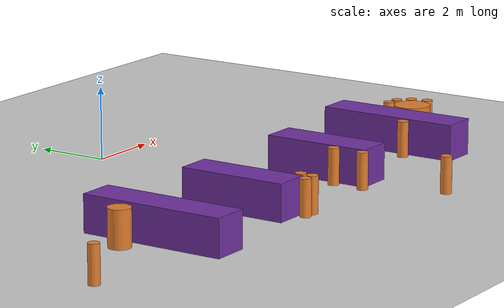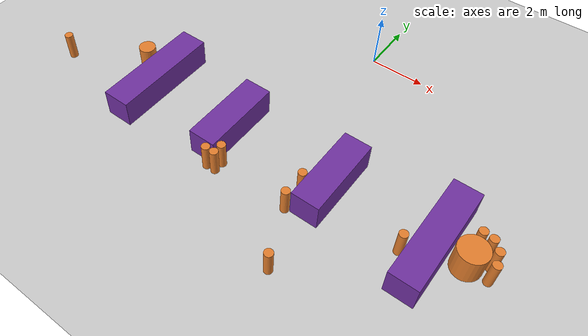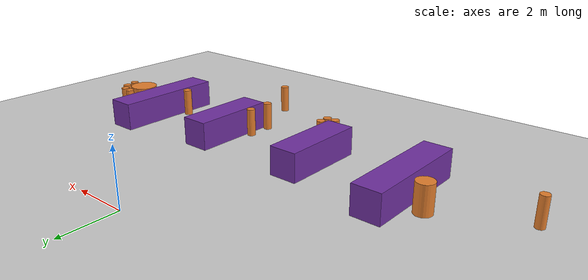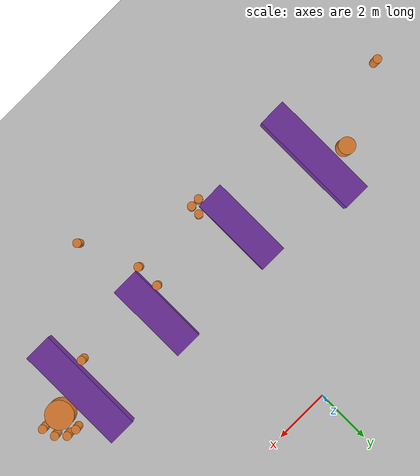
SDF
<sdf version="1.7">
 <world name="default">
  <model name="ground_plane">
   <static>1</static>
   <link name="link">
    <collision name="collision">
     <geometry><plane><normal>0 0 1</normal><size>100 100</size></plane></geometry>
     <surface>
      <contact><collide_bitmask>65535</collide_bitmask></contact>
      <friction><ode><mu>100</mu><mu2>50</mu2></ode></friction>
     </surface>
    </collision>
    <visual name="visual">
     <cast_shadows>0</cast_shadows>
     <geometry><plane><normal>0 0 1</normal><size>100 100</size></plane></geometry>
     <material>
      <script><uri>file://media/materials/scripts/gazebo.material</uri><name>Gazebo/Grey</name></script>
     </material>
    </visual>
   </link>
  </model>
  <model name="B_1_4_1">
   <link name="link_0">
    <inertial>
     <mass>40</mass>
     <inertia><ixx>56.6667</ixx><ixy>0</ixy><ixz>0</ixz><iyy>6.66667</iyy><iyz>0</iyz><izz>56.6667</izz></inertia>
    </inertial>
    <visual name="visual">
     <geometry><box><size>1 4 1</size></box></geometry>
     <material>
      <lighting>1</lighting>
      <script><uri>file://media/materials/scripts/gazebo.material</uri><name>Gazebo/Grey</name></script>
      <shader type="pixel"><normal_map>__default__</normal_map></shader>
      <ambient>0.44 0.19 0.63 1</ambient>
      <diffuse>0.7 0.7 0.7 1</diffuse>
      <specular>0.01 0.01 0.01 1</specular>
      <emissive>0 0 0 1</emissive>
     </material>
    </visual>
    <collision name="collision">
     <geometry><box><size>1 4 1</size></box></geometry>
     <surface>
      <friction>
       <ode><mu>1</mu><mu2>1</mu2><fdir1>0 0 0</fdir1><slip1>0</slip1><slip2>0</slip2></ode>
       <torsional>
        <coefficient>1</coefficient>
        <patch_radius>0</patch_radius>
        <surface_radius>0</surface_radius>
        <use_patch_radius>1</use_patch_radius>
        <ode><slip>0</slip></ode>
       </torsional>
      </friction>
      <bounce><restitution_coefficient>0</restitution_coefficient><threshold>1e+06</threshold></bounce>
      <contact>
       <collide_without_contact>0</collide_without_contact>
       <collide_without_contact_bitmask>1</collide_without_contact_bitmask>
       <collide_bitmask>1</collide_bitmask>
       <ode>
        <soft_cfm>0</soft_cfm>
        <soft_erp>0.2</soft_erp>
        <kp>1e+13</kp>
        <kd>1</kd>
        <max_vel>0.01</max_vel>
        <min_depth>0</min_depth>
       </ode>
       <bullet>
        <split_impulse>1</split_impulse>
        <split_impulse_penetration_threshold>-0.01</split_impulse_penetration_threshold>
        <soft_cfm>0</soft_cfm>
        <soft_erp>0.2</soft_erp>
        <kp>1e+13</kp>
        <kd>1</kd>
       </bullet>
      </contact>
     </surface>
    </collision>
   </link>
   <static>0</static>
   <pose>-5.50992 -5.97184 0.5 0 -0 0</pose>
  </model>
  <model name="B_1_4_4">
   <link name="link_0">
    <inertial>
     <mass>40</mass>
     <inertia><ixx>56.6667</ixx><ixy>0</ixy><ixz>0</ixz><iyy>6.66667</iyy><iyz>0</iyz><izz>56.6667</izz></inertia>
    </inertial>
    <visual name="visual">
     <geometry><box><size>1 4 1</size></box></geometry>
     <material>
      <lighting>1</lighting>
      <script><uri>file://media/materials/scripts/gazebo.material</uri><name>Gazebo/Grey</name></script>
      <shader type="pixel"><normal_map>__default__</normal_map></shader>
      <ambient>0.44 0.19 0.63 1</ambient>
      <diffuse>0.7 0.7 0.7 1</diffuse>
      <specular>0.01 0.01 0.01 1</specular>
      <emissive>0 0 0 1</emissive>
     </material>
    </visual>
    <collision name="collision">
     <geometry><box><size>1 4 1</size></box></geometry>
     <surface>
      <friction>
       <ode><mu>1</mu><mu2>1</mu2><fdir1>0 0 0</fdir1><slip1>0</slip1><slip2>0</slip2></ode>
       <torsional>
        <coefficient>1</coefficient>
        <patch_radius>0</patch_radius>
        <surface_radius>0</surface_radius>
        <use_patch_radius>1</use_patch_radius>
        <ode><slip>0</slip></ode>
       </torsional>
      </friction>
      <bounce><restitution_coefficient>0</restitution_coefficient><threshold>1e+06</threshold></bounce>
      <contact>
       <collide_without_contact>0</collide_without_contact>
       <collide_without_contact_bitmask>1</collide_without_contact_bitmask>
       <collide_bitmask>1</collide_bitmask>
       <ode>
        <soft_cfm>0</soft_cfm>
        <soft_erp>0.2</soft_erp>
        <kp>1e+13</kp>
        <kd>1</kd>
        <max_vel>0.01</max_vel>
        <min_depth>0</min_depth>
       </ode>
       <bullet>
        <split_impulse>1</split_impulse>
        <split_impulse_penetration_threshold>-0.01</split_impulse_penetration_threshold>
        <soft_cfm>0</soft_cfm>
        <soft_erp>0.2</soft_erp>
        <kp>1e+13</kp>
        <kd>1</kd>
       </bullet>
      </contact>
     </surface>
    </collision>
   </link>
   <static>0</static>
   <pose>5.54818 -5.98559 0.5 0 -0 0</pose>
  </model>
  <model name="B_1_3_5">
   <link name="link_1">
    <inertial>
     <mass>30</mass>
     <inertia><ixx>25</ixx><ixy>0</ixy><ixz>0</ixz><iyy>5</iyy><iyz>0</iyz><izz>25</izz></inertia>
    </inertial>
    <visual name="visual">
     <geometry><box><size>1 3 1</size></box></geometry>
     <material>
      <lighting>1</lighting>
      <script><uri>file://media/materials/scripts/gazebo.material</uri><name>Gazebo/Grey</name></script>
      <shader type="pixel"><normal_map>__default__</normal_map></shader>
      <ambient>0.44 0.19 0.63 1</ambient>
      <diffuse>0.7 0.7 0.7 1</diffuse>
      <specular>0.01 0.01 0.01 1</specular>
      <emissive>0 0 0 1</emissive>
     </material>
    </visual>
    <collision name="collision">
     <geometry><box><size>1 3 1</size></box></geometry>
     <surface>
      <friction>
       <ode><mu>1</mu><mu2>1</mu2><fdir1>0 0 0</fdir1><slip1>0</slip1><slip2>0</slip2></ode>
       <torsional>
        <coefficient>1</coefficient>
        <patch_radius>0</patch_radius>
        <surface_radius>0</surface_radius>
        <use_patch_radius>1</use_patch_radius>
        <ode><slip>0</slip></ode>
       </torsional>
      </friction>
      <bounce><restitution_coefficient>0</restitution_coefficient><threshold>1e+06</threshold></bounce>
      <contact>
       <collide_without_contact>0</collide_without_contact>
       <collide_without_contact_bitmask>1</collide_without_contact_bitmask>
       <collide_bitmask>1</collide_bitmask>
       <ode>
        <soft_cfm>0</soft_cfm>
        <soft_erp>0.2</soft_erp>
        <kp>1e+13</kp>
        <kd>1</kd>
        <max_vel>0.01</max_vel>
        <min_depth>0</min_depth>
       </ode>
       <bullet>
        <split_impulse>1</split_impulse>
        <split_impulse_penetration_threshold>-0.01</split_impulse_penetration_threshold>
        <soft_cfm>0</soft_cfm>
        <soft_erp>0.2</soft_erp>
        <kp>1e+13</kp>
        <kd>1</kd>
       </bullet>
      </contact>
     </surface>
    </collision>
   </link>
   <static>0</static>
   <pose>1.94317 -5.96793 0.5 0 -0 0</pose>
  </model>
  <model name="B_1_3_4">
   <link name="link_1">
    <inertial>
     <mass>30</mass>
     <inertia><ixx>25</ixx><ixy>0</ixy><ixz>0</ixz><iyy>5</iyy><iyz>0</iyz><izz>25</izz></inertia>
    </inertial>
    <visual name="visual">
     <geometry><box><size>1 3 1</size></box></geometry>
     <material>
      <lighting>1</lighting>
      <script><uri>file://media/materials/scripts/gazebo.material</uri><name>Gazebo/Grey</name></script>
      <shader type="pixel"><normal_map>__default__</normal_map></shader>
      <ambient>0.44 0.19 0.63 1</ambient>
      <diffuse>0.7 0.7 0.7 1</diffuse>
      <specular>0.01 0.01 0.01 1</specular>
      <emissive>0 0 0 1</emissive>
     </material>
    </visual>
    <collision name="collision">
     <geometry><box><size>1 3 1</size></box></geometry>
     <surface>
      <friction>
       <ode><mu>1</mu><mu2>1</mu2><fdir1>0 0 0</fdir1><slip1>0</slip1><slip2>0</slip2></ode>
       <torsional>
        <coefficient>1</coefficient>
        <patch_radius>0</patch_radius>
        <surface_radius>0</surface_radius>
        <use_patch_radius>1</use_patch_radius>
        <ode><slip>0</slip></ode>
       </torsional>
      </friction>
      <bounce><restitution_coefficient>0</restitution_coefficient><threshold>1e+06</threshold></bounce>
      <contact>
       <collide_without_contact>0</collide_without_contact>
       <collide_without_contact_bitmask>1</collide_without_contact_bitmask>
       <collide_bitmask>1</collide_bitmask>
       <ode>
        <soft_cfm>0</soft_cfm>
        <soft_erp>0.2</soft_erp>
        <kp>1e+13</kp>
        <kd>1</kd>
        <max_vel>0.01</max_vel>
        <min_depth>0</min_depth>
       </ode>
       <bullet>
        <split_impulse>1</split_impulse>
        <split_impulse_penetration_threshold>-0.01</split_impulse_penetration_threshold>
        <soft_cfm>0</soft_cfm>
        <soft_erp>0.2</soft_erp>
        <kp>1e+13</kp>
        <kd>1</kd>
       </bullet>
      </contact>
     </surface>
    </collision>
   </link>
   <static>0</static>
   <pose>-2.08937 -5.9974 0.5 0 -0 0</pose>
  </model>
  <model name="C_1">
   <link name="link_2">
    <inertial>
     <mass>7.85398</mass>
     <inertia><ixx>1.14537</ixx><ixy>0</ixy><ixz>0</ixz><iyy>1.14537</iyy><iyz>0</iyz><izz>0.981748</izz></inertia>
    </inertial>
    <visual name="visual">
     <geometry><cylinder><radius>0.5</radius><length>1</length></cylinder></geometry>
     <material>
      <lighting>1</lighting>
      <script><uri>file://media/materials/scripts/gazebo.material</uri><name>Gazebo/Grey</name></script>
      <shader type="pixel"><normal_map>__default__</normal_map></shader>
      <ambient>0.9 0.5 0.18 1</ambient>
      <diffuse>0.7 0.7 0.7 1</diffuse>
      <specular>0.01 0.01 0.01 1</specular>
      <emissive>0 0 0 1</emissive>
     </material>
    </visual>
    <collision name="collision">
     <geometry><cylinder><radius>0.5</radius><length>1</length></cylinder></geometry>
     <surface>
      <friction>
       <ode><mu>1</mu><mu2>1</mu2><fdir1>0 0 0</fdir1><slip1>0</slip1><slip2>0</slip2></ode>
       <torsional>
        <coefficient>1</coefficient>
        <patch_radius>0</patch_radius>
        <surface_radius>0</surface_radius>
        <use_patch_radius>1</use_patch_radius>
        <ode><slip>0</slip></ode>
       </torsional>
      </friction>
      <bounce><restitution_coefficient>0</restitution_coefficient><threshold>1e+06</threshold></bounce>
      <contact>
       <collide_without_contact>0</collide_without_contact>
       <collide_without_contact_bitmask>1</collide_without_contact_bitmask>
       <collide_bitmask>1</collide_bitmask>
       <ode>
        <soft_cfm>0</soft_cfm>
        <soft_erp>0.2</soft_erp>
        <kp>1e+13</kp>
        <kd>1</kd>
        <max_vel>0.01</max_vel>
        <min_depth>0</min_depth>
       </ode>
       <bullet>
        <split_impulse>1</split_impulse>
        <split_impulse_penetration_threshold>-0.01</split_impulse_penetration_threshold>
        <soft_cfm>0</soft_cfm>
        <soft_erp>0.2</soft_erp>
        <kp>1e+13</kp>
        <kd>1</kd>
       </bullet>
      </contact>
     </surface>
    </collision>
   </link>
   <static>0</static>
   <pose>6.61588 -5.87964 0.499805 0 -0 -0.000369</pose>
  </model>
  <model name="C_03_23">
   <link name="link_3">
    <inertial>
     <mass>2.82743</mass>
     <inertia>
      <ixx>0.299237</ixx>
      <ixy>0</ixy>
      <ixz>0</ixz>
      <iyy>0.299237</iyy>
      <iyz>0</iyz>
      <izz>0.127235</izz>
     </inertia>
    </inertial>
    <visual name="visual">
     <geometry><cylinder><radius>0.15</radius><length>1</length></cylinder></geometry>
     <material>
      <lighting>1</lighting>
      <script><uri>file://media/materials/scripts/gazebo.material</uri><name>Gazebo/Grey</name></script>
      <shader type="pixel"><normal_map>__default__</normal_map></shader>
      <ambient>0.9 0.5 0.18 1</ambient>
      <diffuse>0.7 0.7 0.7 1</diffuse>
      <specular>0.01 0.01 0.01 1</specular>
      <emissive>0 0 0 1</emissive>
     </material>
    </visual>
    <collision name="collision">
     <geometry><cylinder><radius>0.15</radius><length>1</length></cylinder></geometry>
     <surface>
      <friction>
       <ode><mu>1</mu><mu2>1</mu2><fdir1>0 0 0</fdir1><slip1>0</slip1><slip2>0</slip2></ode>
       <torsional>
        <coefficient>1</coefficient>
        <patch_radius>0</patch_radius>
        <surface_radius>0</surface_radius>
        <use_patch_radius>1</use_patch_radius>
        <ode><slip>0</slip></ode>
       </torsional>
      </friction>
      <bounce><restitution_coefficient>0</restitution_coefficient><threshold>1e+06</threshold></bounce>
      <contact>
       <collide_without_contact>0</collide_without_contact>
       <collide_without_contact_bitmask>1</collide_without_contact_bitmask>
       <collide_bitmask>1</collide_bitmask>
       <ode>
        <soft_cfm>0</soft_cfm>
        <soft_erp>0.2</soft_erp>
        <kp>1e+13</kp>
        <kd>1</kd>
        <max_vel>0.01</max_vel>
        <min_depth>0</min_depth>
       </ode>
       <bullet>
        <split_impulse>1</split_impulse>
        <split_impulse_penetration_threshold>-0.01</split_impulse_penetration_threshold>
        <soft_cfm>0</soft_cfm>
        <soft_erp>0.2</soft_erp>
        <kp>1e+13</kp>
        <kd>1</kd>
       </bullet>
      </contact>
     </surface>
    </collision>
   </link>
   <static>0</static>
   <pose>4.81153 -6.64217 0.499805 0 -0 0</pose>
  </model>
  <model name="C_06_0">
   <link name="link_3">
    <inertial>
     <mass>2.82743</mass>
     <inertia>
      <ixx>0.299237</ixx>
      <ixy>0</ixy>
      <ixz>0</ixz>
      <iyy>0.299237</iyy>
      <iyz>0</iyz>
      <izz>0.127235</izz>
     </inertia>
    </inertial>
    <visual name="visual">
     <geometry><cylinder><radius>0.3</radius><length>1</length></cylinder></geometry>
     <material>
      <lighting>1</lighting>
      <script><uri>file://media/materials/scripts/gazebo.material</uri><name>Gazebo/Grey</name></script>
      <shader type="pixel"><normal_map>__default__</normal_map></shader>
      <ambient>0.9 0.5 0.18 1</ambient>
      <diffuse>0.7 0.7 0.7 1</diffuse>
      <specular>0.01 0.01 0.01 1</specular>
      <emissive>0 0 0 1</emissive>
     </material>
    </visual>
    <collision name="collision">
     <geometry><cylinder><radius>0.3</radius><length>1</length></cylinder></geometry>
     <surface>
      <friction>
       <ode><mu>1</mu><mu2>1</mu2><fdir1>0 0 0</fdir1><slip1>0</slip1><slip2>0</slip2></ode>
       <torsional>
        <coefficient>1</coefficient>
        <patch_radius>0</patch_radius>
        <surface_radius>0</surface_radius>
        <use_patch_radius>1</use_patch_radius>
        <ode><slip>0</slip></ode>
       </torsional>
      </friction>
      <bounce><restitution_coefficient>0</restitution_coefficient><threshold>1e+06</threshold></bounce>
      <contact>
       <collide_without_contact>0</collide_without_contact>
       <collide_without_contact_bitmask>1</collide_without_contact_bitmask>
       <collide_bitmask>1</collide_bitmask>
       <ode>
        <soft_cfm>0</soft_cfm>
        <soft_erp>0.2</soft_erp>
        <kp>1e+13</kp>
        <kd>1</kd>
        <max_vel>0.01</max_vel>
        <min_depth>0</min_depth>
       </ode>
       <bullet>
        <split_impulse>1</split_impulse>
        <split_impulse_penetration_threshold>-0.01</split_impulse_penetration_threshold>
        <soft_cfm>0</soft_cfm>
        <soft_erp>0.2</soft_erp>
        <kp>1e+13</kp>
        <kd>1</kd>
       </bullet>
      </contact>
     </surface>
    </collision>
   </link>
   <static>0</static>
   <pose>-6.48687 -5.41769 0.499805 0 -0 0</pose>
  </model>
  <model name="C_03_24">
   <link name="link_3">
    <inertial>
     <mass>2.82743</mass>
     <inertia>
      <ixx>0.299237</ixx>
      <ixy>0</ixy>
      <ixz>0</ixz>
      <iyy>0.299237</iyy>
      <iyz>0</iyz>
      <izz>0.127235</izz>
     </inertia>
    </inertial>
    <visual name="visual">
     <geometry><cylinder><radius>0.15</radius><length>1</length></cylinder></geometry>
     <material>
      <lighting>1</lighting>
      <script><uri>file://media/materials/scripts/gazebo.material</uri><name>Gazebo/Grey</name></script>
      <shader type="pixel"><normal_map>__default__</normal_map></shader>
      <ambient>0.9 0.5 0.18 1</ambient>
      <diffuse>0.7 0.7 0.7 1</diffuse>
      <specular>0.01 0.01 0.01 1</specular>
      <emissive>0 0 0 1</emissive>
     </material>
    </visual>
    <collision name="collision">
     <geometry><cylinder><radius>0.15</radius><length>1</length></cylinder></geometry>
     <surface>
      <friction>
       <ode><mu>1</mu><mu2>1</mu2><fdir1>0 0 0</fdir1><slip1>0</slip1><slip2>0</slip2></ode>
       <torsional>
        <coefficient>1</coefficient>
        <patch_radius>0</patch_radius>
        <surface_radius>0</surface_radius>
        <use_patch_radius>1</use_patch_radius>
        <ode><slip>0</slip></ode>
       </torsional>
      </friction>
      <bounce><restitution_coefficient>0</restitution_coefficient><threshold>1e+06</threshold></bounce>
      <contact>
       <collide_without_contact>0</collide_without_contact>
       <collide_without_contact_bitmask>1</collide_without_contact_bitmask>
       <collide_bitmask>1</collide_bitmask>
       <ode>
        <soft_cfm>0</soft_cfm>
        <soft_erp>0.2</soft_erp>
        <kp>1e+13</kp>
        <kd>1</kd>
        <max_vel>0.01</max_vel>
        <min_depth>0</min_depth>
       </ode>
       <bullet>
        <split_impulse>1</split_impulse>
        <split_impulse_penetration_threshold>-0.01</split_impulse_penetration_threshold>
        <soft_cfm>0</soft_cfm>
        <soft_erp>0.2</soft_erp>
        <kp>1e+13</kp>
        <kd>1</kd>
       </bullet>
      </contact>
     </surface>
    </collision>
   </link>
   <static>0</static>
   <pose>-9.24511 -6.7358 0.499805 0 0 -4e-06</pose>
  </model>
  <model name="C_03_25">
   <link name="link_3">
    <inertial>
     <mass>2.82743</mass>
     <inertia>
      <ixx>0.299237</ixx>
      <ixy>0</ixy>
      <ixz>0</ixz>
      <iyy>0.299237</iyy>
      <iyz>0</iyz>
      <izz>0.127235</izz>
     </inertia>
    </inertial>
    <visual name="visual">
     <geometry><cylinder><radius>0.15</radius><length>1</length></cylinder></geometry>
     <material>
      <lighting>1</lighting>
      <script><uri>file://media/materials/scripts/gazebo.material</uri><name>Gazebo/Grey</name></script>
      <shader type="pixel"><normal_map>__default__</normal_map></shader>
      <ambient>0.9 0.5 0.18 1</ambient>
      <diffuse>0.7 0.7 0.7 1</diffuse>
      <specular>0.01 0.01 0.01 1</specular>
      <emissive>0 0 0 1</emissive>
     </material>
    </visual>
    <collision name="collision">
     <geometry><cylinder><radius>0.15</radius><length>1</length></cylinder></geometry>
     <surface>
      <friction>
       <ode><mu>1</mu><mu2>1</mu2><fdir1>0 0 0</fdir1><slip1>0</slip1><slip2>0</slip2></ode>
       <torsional>
        <coefficient>1</coefficient>
        <patch_radius>0</patch_radius>
        <surface_radius>0</surface_radius>
        <use_patch_radius>1</use_patch_radius>
        <ode><slip>0</slip></ode>
       </torsional>
      </friction>
      <bounce><restitution_coefficient>0</restitution_coefficient><threshold>1e+06</threshold></bounce>
      <contact>
       <collide_without_contact>0</collide_without_contact>
       <collide_without_contact_bitmask>1</collide_without_contact_bitmask>
       <collide_bitmask>1</collide_bitmask>
       <ode>
        <soft_cfm>0</soft_cfm>
        <soft_erp>0.2</soft_erp>
        <kp>1e+13</kp>
        <kd>1</kd>
        <max_vel>0.01</max_vel>
        <min_depth>0</min_depth>
       </ode>
       <bullet>
        <split_impulse>1</split_impulse>
        <split_impulse_penetration_threshold>-0.01</split_impulse_penetration_threshold>
        <soft_cfm>0</soft_cfm>
        <soft_erp>0.2</soft_erp>
        <kp>1e+13</kp>
        <kd>1</kd>
       </bullet>
      </contact>
     </surface>
    </collision>
   </link>
   <static>0</static>
   <pose>7.22121 -5.5009 0.499805 0 0 -7e-06</pose>
  </model>
  <model name="C_03_26">
   <link name="link_3">
    <inertial>
     <mass>2.82743</mass>
     <inertia>
      <ixx>0.299237</ixx>
      <ixy>0</ixy>
      <ixz>0</ixz>
      <iyy>0.299237</iyy>
      <iyz>0</iyz>
      <izz>0.127235</izz>
     </inertia>
    </inertial>
    <visual name="visual">
     <geometry><cylinder><radius>0.15</radius><length>1</length></cylinder></geometry>
     <material>
      <lighting>1</lighting>
      <script><uri>file://media/materials/scripts/gazebo.material</uri><name>Gazebo/Grey</name></script>
      <shader type="pixel"><normal_map>__default__</normal_map></shader>
      <ambient>0.9 0.5 0.18 1</ambient>
      <diffuse>0.7 0.7 0.7 1</diffuse>
      <specular>0.01 0.01 0.01 1</specular>
      <emissive>0 0 0 1</emissive>
     </material>
    </visual>
    <collision name="collision">
     <geometry><cylinder><radius>0.15</radius><length>1</length></cylinder></geometry>
     <surface>
      <friction>
       <ode><mu>1</mu><mu2>1</mu2><fdir1>0 0 0</fdir1><slip1>0</slip1><slip2>0</slip2></ode>
       <torsional>
        <coefficient>1</coefficient>
        <patch_radius>0</patch_radius>
        <surface_radius>0</surface_radius>
        <use_patch_radius>1</use_patch_radius>
        <ode><slip>0</slip></ode>
       </torsional>
      </friction>
      <bounce><restitution_coefficient>0</restitution_coefficient><threshold>1e+06</threshold></bounce>
      <contact>
       <collide_without_contact>0</collide_without_contact>
       <collide_without_contact_bitmask>1</collide_without_contact_bitmask>
       <collide_bitmask>1</collide_bitmask>
       <ode>
        <soft_cfm>0</soft_cfm>
        <soft_erp>0.2</soft_erp>
        <kp>1e+13</kp>
        <kd>1</kd>
        <max_vel>0.01</max_vel>
        <min_depth>0</min_depth>
       </ode>
       <bullet>
        <split_impulse>1</split_impulse>
        <split_impulse_penetration_threshold>-0.01</split_impulse_penetration_threshold>
        <soft_cfm>0</soft_cfm>
        <soft_erp>0.2</soft_erp>
        <kp>1e+13</kp>
        <kd>1</kd>
       </bullet>
      </contact>
     </surface>
    </collision>
   </link>
   <static>0</static>
   <pose>7.34024 -5.94494 0.499805 0 0 -9e-06</pose>
  </model>
  <model name="C_03_27">
   <link name="link_3">
    <inertial>
     <mass>2.82743</mass>
     <inertia>
      <ixx>0.299237</ixx>
      <ixy>0</ixy>
      <ixz>0</ixz>
      <iyy>0.299237</iyy>
      <iyz>0</iyz>
      <izz>0.127235</izz>
     </inertia>
    </inertial>
    <visual name="visual">
     <geometry><cylinder><radius>0.15</radius><length>1</length></cylinder></geometry>
     <material>
      <lighting>1</lighting>
      <script><uri>file://media/materials/scripts/gazebo.material</uri><name>Gazebo/Grey</name></script>
      <shader type="pixel"><normal_map>__default__</normal_map></shader>
      <ambient>0.9 0.5 0.18 1</ambient>
      <diffuse>0.7 0.7 0.7 1</diffuse>
      <specular>0.01 0.01 0.01 1</specular>
      <emissive>0 0 0 1</emissive>
     </material>
    </visual>
    <collision name="collision">
     <geometry><cylinder><radius>0.15</radius><length>1</length></cylinder></geometry>
     <surface>
      <friction>
       <ode><mu>1</mu><mu2>1</mu2><fdir1>0 0 0</fdir1><slip1>0</slip1><slip2>0</slip2></ode>
       <torsional>
        <coefficient>1</coefficient>
        <patch_radius>0</patch_radius>
        <surface_radius>0</surface_radius>
        <use_patch_radius>1</use_patch_radius>
        <ode><slip>0</slip></ode>
       </torsional>
      </friction>
      <bounce><restitution_coefficient>0</restitution_coefficient><threshold>1e+06</threshold></bounce>
      <contact>
       <collide_without_contact>0</collide_without_contact>
       <collide_without_contact_bitmask>1</collide_without_contact_bitmask>
       <collide_bitmask>1</collide_bitmask>
       <ode>
        <soft_cfm>0</soft_cfm>
        <soft_erp>0.2</soft_erp>
        <kp>1e+13</kp>
        <kd>1</kd>
        <max_vel>0.01</max_vel>
        <min_depth>0</min_depth>
       </ode>
       <bullet>
        <split_impulse>1</split_impulse>
        <split_impulse_penetration_threshold>-0.01</split_impulse_penetration_threshold>
        <soft_cfm>0</soft_cfm>
        <soft_erp>0.2</soft_erp>
        <kp>1e+13</kp>
        <kd>1</kd>
       </bullet>
      </contact>
     </surface>
    </collision>
   </link>
   <static>0</static>
   <pose>6.92455 -5.20509 0.499805 0 0 -1.1e-05</pose>
  </model>
  <model name="C_03_28">
   <link name="link_3">
    <inertial>
     <mass>2.82743</mass>
     <inertia>
      <ixx>0.299237</ixx>
      <ixy>0</ixy>
      <ixz>0</ixz>
      <iyy>0.299237</iyy>
      <iyz>0</iyz>
      <izz>0.127235</izz>
     </inertia>
    </inertial>
    <visual name="visual">
     <geometry><cylinder><radius>0.15</radius><length>1</length></cylinder></geometry>
     <material>
      <lighting>1</lighting>
      <script><uri>file://media/materials/scripts/gazebo.material</uri><name>Gazebo/Grey</name></script>
      <shader type="pixel"><normal_map>__default__</normal_map></shader>
      <ambient>0.9 0.5 0.18 1</ambient>
      <diffuse>0.7 0.7 0.7 1</diffuse>
      <specular>0.01 0.01 0.01 1</specular>
      <emissive>0 0 0 1</emissive>
     </material>
    </visual>
    <collision name="collision">
     <geometry><cylinder><radius>0.15</radius><length>1</length></cylinder></geometry>
     <surface>
      <friction>
       <ode><mu>1</mu><mu2>1</mu2><fdir1>0 0 0</fdir1><slip1>0</slip1><slip2>0</slip2></ode>
       <torsional>
        <coefficient>1</coefficient>
        <patch_radius>0</patch_radius>
        <surface_radius>0</surface_radius>
        <use_patch_radius>1</use_patch_radius>
        <ode><slip>0</slip></ode>
       </torsional>
      </friction>
      <bounce><restitution_coefficient>0</restitution_coefficient><threshold>1e+06</threshold></bounce>
      <contact>
       <collide_without_contact>0</collide_without_contact>
       <collide_without_contact_bitmask>1</collide_without_contact_bitmask>
       <collide_bitmask>1</collide_bitmask>
       <ode>
        <soft_cfm>0</soft_cfm>
        <soft_erp>0.2</soft_erp>
        <kp>1e+13</kp>
        <kd>1</kd>
        <max_vel>0.01</max_vel>
        <min_depth>0</min_depth>
       </ode>
       <bullet>
        <split_impulse>1</split_impulse>
        <split_impulse_penetration_threshold>-0.01</split_impulse_penetration_threshold>
        <soft_cfm>0</soft_cfm>
        <soft_erp>0.2</soft_erp>
        <kp>1e+13</kp>
        <kd>1</kd>
       </bullet>
      </contact>
     </surface>
    </collision>
   </link>
   <static>0</static>
   <pose>6.57079 -5.15313 0.499805 0 -0 0.000313</pose>
  </model>
  <model name="C_03_4">
   <link name="link_3">
    <inertial>
     <mass>2.82743</mass>
     <inertia>
      <ixx>0.299237</ixx>
      <ixy>0</ixy>
      <ixz>0</ixz>
      <iyy>0.299237</iyy>
      <iyz>0</iyz>
      <izz>0.127235</izz>
     </inertia>
    </inertial>
    <visual name="visual">
     <geometry><cylinder><radius>0.15</radius><length>1</length></cylinder></geometry>
     <material>
      <lighting>1</lighting>
      <script><uri>file://media/materials/scripts/gazebo.material</uri><name>Gazebo/Grey</name></script>
      <shader type="pixel"><normal_map>__default__</normal_map></shader>
      <ambient>0.9 0.5 0.18 1</ambient>
      <diffuse>0.7 0.7 0.7 1</diffuse>
      <specular>0.01 0.01 0.01 1</specular>
      <emissive>0 0 0 1</emissive>
     </material>
    </visual>
    <collision name="collision">
     <geometry><cylinder><radius>0.15</radius><length>1</length></cylinder></geometry>
     <surface>
      <friction>
       <ode><mu>1</mu><mu2>1</mu2><fdir1>0 0 0</fdir1><slip1>0</slip1><slip2>0</slip2></ode>
       <torsional>
        <coefficient>1</coefficient>
        <patch_radius>0</patch_radius>
        <surface_radius>0</surface_radius>
        <use_patch_radius>1</use_patch_radius>
        <ode><slip>0</slip></ode>
       </torsional>
      </friction>
      <bounce><restitution_coefficient>0</restitution_coefficient><threshold>1e+06</threshold></bounce>
      <contact>
       <collide_without_contact>0</collide_without_contact>
       <collide_without_contact_bitmask>1</collide_without_contact_bitmask>
       <collide_bitmask>1</collide_bitmask>
       <ode>
        <soft_cfm>0</soft_cfm>
        <soft_erp>0.2</soft_erp>
        <kp>1e+13</kp>
        <kd>1</kd>
        <max_vel>0.01</max_vel>
        <min_depth>0</min_depth>
       </ode>
       <bullet>
        <split_impulse>1</split_impulse>
        <split_impulse_penetration_threshold>-0.01</split_impulse_penetration_threshold>
        <soft_cfm>0</soft_cfm>
        <soft_erp>0.2</soft_erp>
        <kp>1e+13</kp>
        <kd>1</kd>
       </bullet>
      </contact>
     </surface>
    </collision>
   </link>
   <static>0</static>
   <pose>-1.74478 -7.67486 0.499805 0 -0 5e-06</pose>
  </model>
  <model name="C_03_29">
   <link name="link_3">
    <inertial>
     <mass>2.82743</mass>
     <inertia>
      <ixx>0.299237</ixx>
      <ixy>0</ixy>
      <ixz>0</ixz>
      <iyy>0.299237</iyy>
      <iyz>0</iyz>
      <izz>0.127235</izz>
     </inertia>
    </inertial>
    <visual name="visual">
     <geometry><cylinder><radius>0.15</radius><length>1</length></cylinder></geometry>
     <material>
      <lighting>1</lighting>
      <script><uri>file://media/materials/scripts/gazebo.material</uri><name>Gazebo/Grey</name></script>
      <shader type="pixel"><normal_map>__default__</normal_map></shader>
      <ambient>0.9 0.5 0.18 1</ambient>
      <diffuse>0.7 0.7 0.7 1</diffuse>
      <specular>0.01 0.01 0.01 1</specular>
      <emissive>0 0 0 1</emissive>
     </material>
    </visual>
    <collision name="collision">
     <geometry><cylinder><radius>0.15</radius><length>1</length></cylinder></geometry>
     <surface>
      <friction>
       <ode><mu>1</mu><mu2>1</mu2><fdir1>0 0 0</fdir1><slip1>0</slip1><slip2>0</slip2></ode>
       <torsional>
        <coefficient>1</coefficient>
        <patch_radius>0</patch_radius>
        <surface_radius>0</surface_radius>
        <use_patch_radius>1</use_patch_radius>
        <ode><slip>0</slip></ode>
       </torsional>
      </friction>
      <bounce><restitution_coefficient>0</restitution_coefficient><threshold>1e+06</threshold></bounce>
      <contact>
       <collide_without_contact>0</collide_without_contact>
       <collide_without_contact_bitmask>1</collide_without_contact_bitmask>
       <collide_bitmask>1</collide_bitmask>
       <ode>
        <soft_cfm>0</soft_cfm>
        <soft_erp>0.2</soft_erp>
        <kp>1e+13</kp>
        <kd>1</kd>
        <max_vel>0.01</max_vel>
        <min_depth>0</min_depth>
       </ode>
       <bullet>
        <split_impulse>1</split_impulse>
        <split_impulse_penetration_threshold>-0.01</split_impulse_penetration_threshold>
        <soft_cfm>0</soft_cfm>
        <soft_erp>0.2</soft_erp>
        <kp>1e+13</kp>
        <kd>1</kd>
       </bullet>
      </contact>
     </surface>
    </collision>
   </link>
   <static>0</static>
   <pose>-1.41362 -7.66686 0.499805 0 -0 5e-06</pose>
  </model>
  <model name="C_03_30">
   <link name="link_3">
    <inertial>
     <mass>2.82743</mass>
     <inertia>
      <ixx>0.299237</ixx>
      <ixy>0</ixy>
      <ixz>0</ixz>
      <iyy>0.299237</iyy>
      <iyz>0</iyz>
      <izz>0.127235</izz>
     </inertia>
    </inertial>
    <visual name="visual">
     <geometry><cylinder><radius>0.15</radius><length>1</length></cylinder></geometry>
     <material>
      <lighting>1</lighting>
      <script><uri>file://media/materials/scripts/gazebo.material</uri><name>Gazebo/Grey</name></script>
      <shader type="pixel"><normal_map>__default__</normal_map></shader>
      <ambient>0.9 0.5 0.18 1</ambient>
      <diffuse>0.7 0.7 0.7 1</diffuse>
      <specular>0.01 0.01 0.01 1</specular>
      <emissive>0 0 0 1</emissive>
     </material>
    </visual>
    <collision name="collision">
     <geometry><cylinder><radius>0.15</radius><length>1</length></cylinder></geometry>
     <surface>
      <friction>
       <ode><mu>1</mu><mu2>1</mu2><fdir1>0 0 0</fdir1><slip1>0</slip1><slip2>0</slip2></ode>
       <torsional>
        <coefficient>1</coefficient>
        <patch_radius>0</patch_radius>
        <surface_radius>0</surface_radius>
        <use_patch_radius>1</use_patch_radius>
        <ode><slip>0</slip></ode>
       </torsional>
      </friction>
      <bounce><restitution_coefficient>0</restitution_coefficient><threshold>1e+06</threshold></bounce>
      <contact>
       <collide_without_contact>0</collide_without_contact>
       <collide_without_contact_bitmask>1</collide_without_contact_bitmask>
       <collide_bitmask>1</collide_bitmask>
       <ode>
        <soft_cfm>0</soft_cfm>
        <soft_erp>0.2</soft_erp>
        <kp>1e+13</kp>
        <kd>1</kd>
        <max_vel>0.01</max_vel>
        <min_depth>0</min_depth>
       </ode>
       <bullet>
        <split_impulse>1</split_impulse>
        <split_impulse_penetration_threshold>-0.01</split_impulse_penetration_threshold>
        <soft_cfm>0</soft_cfm>
        <soft_erp>0.2</soft_erp>
        <kp>1e+13</kp>
        <kd>1</kd>
       </bullet>
      </contact>
     </surface>
    </collision>
   </link>
   <static>0</static>
   <pose>-1.39802 -7.31003 0.499805 0 -0 5e-06</pose>
  </model>
  <model name="C_03_31">
   <link name="link_3">
    <inertial>
     <mass>2.82743</mass>
     <inertia>
      <ixx>0.299237</ixx>
      <ixy>0</ixy>
      <ixz>0</ixz>
      <iyy>0.299237</iyy>
      <iyz>0</iyz>
      <izz>0.127235</izz>
     </inertia>
    </inertial>
    <visual name="visual">
     <geometry><cylinder><radius>0.15</radius><length>1</length></cylinder></geometry>
     <material>
      <lighting>1</lighting>
      <script><uri>file://media/materials/scripts/gazebo.material</uri><name>Gazebo/Grey</name></script>
      <shader type="pixel"><normal_map>__default__</normal_map></shader>
      <ambient>0.9 0.5 0.18 1</ambient>
      <diffuse>0.7 0.7 0.7 1</diffuse>
      <specular>0.01 0.01 0.01 1</specular>
      <emissive>0 0 0 1</emissive>
     </material>
    </visual>
    <collision name="collision">
     <geometry><cylinder><radius>0.15</radius><length>1</length></cylinder></geometry>
     <surface>
      <friction>
       <ode><mu>1</mu><mu2>1</mu2><fdir1>0 0 0</fdir1><slip1>0</slip1><slip2>0</slip2></ode>
       <torsional>
        <coefficient>1</coefficient>
        <patch_radius>0</patch_radius>
        <surface_radius>0</surface_radius>
        <use_patch_radius>1</use_patch_radius>
        <ode><slip>0</slip></ode>
       </torsional>
      </friction>
      <bounce><restitution_coefficient>0</restitution_coefficient><threshold>1e+06</threshold></bounce>
      <contact>
       <collide_without_contact>0</collide_without_contact>
       <collide_without_contact_bitmask>1</collide_without_contact_bitmask>
       <collide_bitmask>1</collide_bitmask>
       <ode>
        <soft_cfm>0</soft_cfm>
        <soft_erp>0.2</soft_erp>
        <kp>1e+13</kp>
        <kd>1</kd>
        <max_vel>0.01</max_vel>
        <min_depth>0</min_depth>
       </ode>
       <bullet>
        <split_impulse>1</split_impulse>
        <split_impulse_penetration_threshold>-0.01</split_impulse_penetration_threshold>
        <soft_cfm>0</soft_cfm>
        <soft_erp>0.2</soft_erp>
        <kp>1e+13</kp>
        <kd>1</kd>
       </bullet>
      </contact>
     </surface>
    </collision>
   </link>
   <static>0</static>
   <pose>1.27708 -6.62062 0.499805 0 -0 5e-06</pose>
  </model>
  <model name="C_03_32">
   <link name="link_3">
    <inertial>
     <mass>2.82743</mass>
     <inertia>
      <ixx>0.299237</ixx>
      <ixy>0</ixy>
      <ixz>0</ixz>
      <iyy>0.299237</iyy>
      <iyz>0</iyz>
      <izz>0.127235</izz>
     </inertia>
    </inertial>
    <visual name="visual">
     <geometry><cylinder><radius>0.15</radius><length>1</length></cylinder></geometry>
     <material>
      <lighting>1</lighting>
      <script><uri>file://media/materials/scripts/gazebo.material</uri><name>Gazebo/Grey</name></script>
      <shader type="pixel"><normal_map>__default__</normal_map></shader>
      <ambient>0.9 0.5 0.18 1</ambient>
      <diffuse>0.7 0.7 0.7 1</diffuse>
      <specular>0.01 0.01 0.01 1</specular>
      <emissive>0 0 0 1</emissive>
     </material>
    </visual>
    <collision name="collision">
     <geometry><cylinder><radius>0.15</radius><length>1</length></cylinder></geometry>
     <surface>
      <friction>
       <ode><mu>1</mu><mu2>1</mu2><fdir1>0 0 0</fdir1><slip1>0</slip1><slip2>0</slip2></ode>
       <torsional>
        <coefficient>1</coefficient>
        <patch_radius>0</patch_radius>
        <surface_radius>0</surface_radius>
        <use_patch_radius>1</use_patch_radius>
        <ode><slip>0</slip></ode>
       </torsional>
      </friction>
      <bounce><restitution_coefficient>0</restitution_coefficient><threshold>1e+06</threshold></bounce>
      <contact>
       <collide_without_contact>0</collide_without_contact>
       <collide_without_contact_bitmask>1</collide_without_contact_bitmask>
       <collide_bitmask>1</collide_bitmask>
       <ode>
        <soft_cfm>0</soft_cfm>
        <soft_erp>0.2</soft_erp>
        <kp>1e+13</kp>
        <kd>1</kd>
        <max_vel>0.01</max_vel>
        <min_depth>0</min_depth>
       </ode>
       <bullet>
        <split_impulse>1</split_impulse>
        <split_impulse_penetration_threshold>-0.01</split_impulse_penetration_threshold>
        <soft_cfm>0</soft_cfm>
        <soft_erp>0.2</soft_erp>
        <kp>1e+13</kp>
        <kd>1</kd>
       </bullet>
      </contact>
     </surface>
    </collision>
   </link>
   <static>0</static>
   <pose>1.2753 -7.50058 0.499805 0 -0 5e-06</pose>
  </model>
  <model name="C_03_33">
   <link name="link_3">
    <inertial>
     <mass>2.82743</mass>
     <inertia>
      <ixx>0.299237</ixx>
      <ixy>0</ixy>
      <ixz>0</ixz>
      <iyy>0.299237</iyy>
      <iyz>0</iyz>
      <izz>0.127235</izz>
     </inertia>
    </inertial>
    <visual name="visual">
     <geometry><cylinder><radius>0.15</radius><length>1</length></cylinder></geometry>
     <material>
      <lighting>1</lighting>
      <script><uri>file://media/materials/scripts/gazebo.material</uri><name>Gazebo/Grey</name></script>
      <shader type="pixel"><normal_map>__default__</normal_map></shader>
      <ambient>0.9 0.5 0.18 1</ambient>
      <diffuse>0.7 0.7 0.7 1</diffuse>
      <specular>0.01 0.01 0.01 1</specular>
      <emissive>0 0 0 1</emissive>
     </material>
    </visual>
    <collision name="collision">
     <geometry><cylinder><radius>0.15</radius><length>1</length></cylinder></geometry>
     <surface>
      <friction>
       <ode><mu>1</mu><mu2>1</mu2><fdir1>0 0 0</fdir1><slip1>0</slip1><slip2>0</slip2></ode>
       <torsional>
        <coefficient>1</coefficient>
        <patch_radius>0</patch_radius>
        <surface_radius>0</surface_radius>
        <use_patch_radius>1</use_patch_radius>
        <ode><slip>0</slip></ode>
       </torsional>
      </friction>
      <bounce><restitution_coefficient>0</restitution_coefficient><threshold>1e+06</threshold></bounce>
      <contact>
       <collide_without_contact>0</collide_without_contact>
       <collide_without_contact_bitmask>1</collide_without_contact_bitmask>
       <collide_bitmask>1</collide_bitmask>
       <ode>
        <soft_cfm>0</soft_cfm>
        <soft_erp>0.2</soft_erp>
        <kp>1e+13</kp>
        <kd>1</kd>
        <max_vel>0.01</max_vel>
        <min_depth>0</min_depth>
       </ode>
       <bullet>
        <split_impulse>1</split_impulse>
        <split_impulse_penetration_threshold>-0.01</split_impulse_penetration_threshold>
        <soft_cfm>0</soft_cfm>
        <soft_erp>0.2</soft_erp>
        <kp>1e+13</kp>
        <kd>1</kd>
       </bullet>
      </contact>
     </surface>
    </collision>
   </link>
   <static>0</static>
   <pose>2.14618 -9.50015 0.499805 0 -0 0</pose>
  </model>
 </world>
</sdf>
